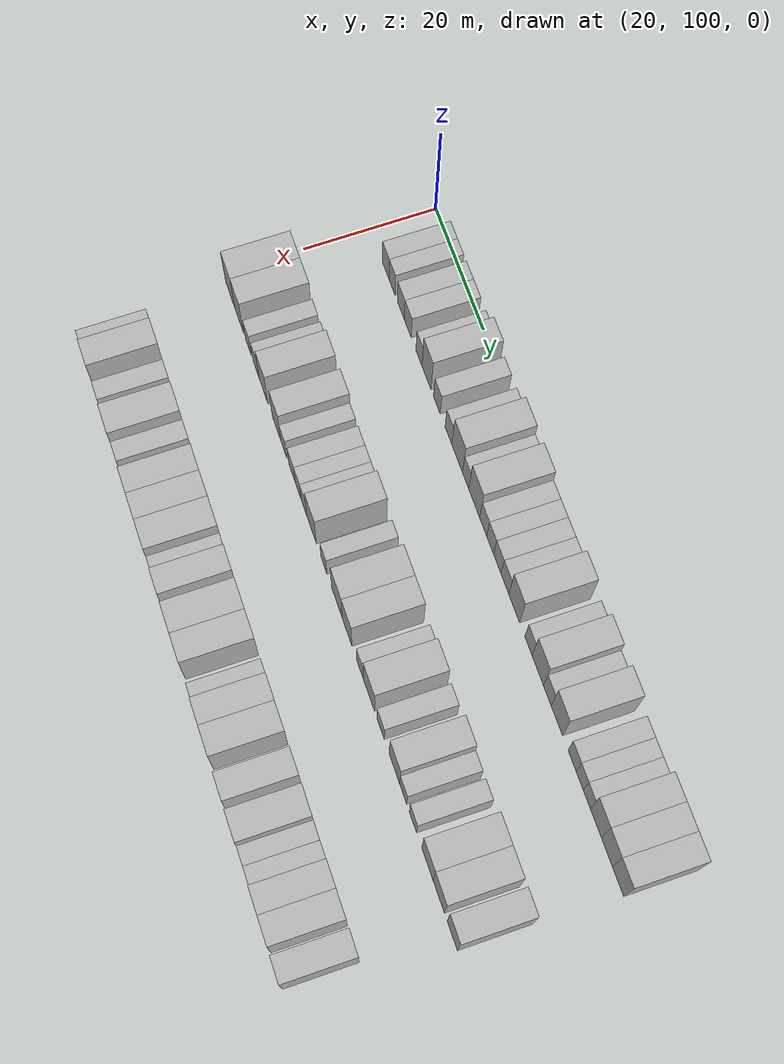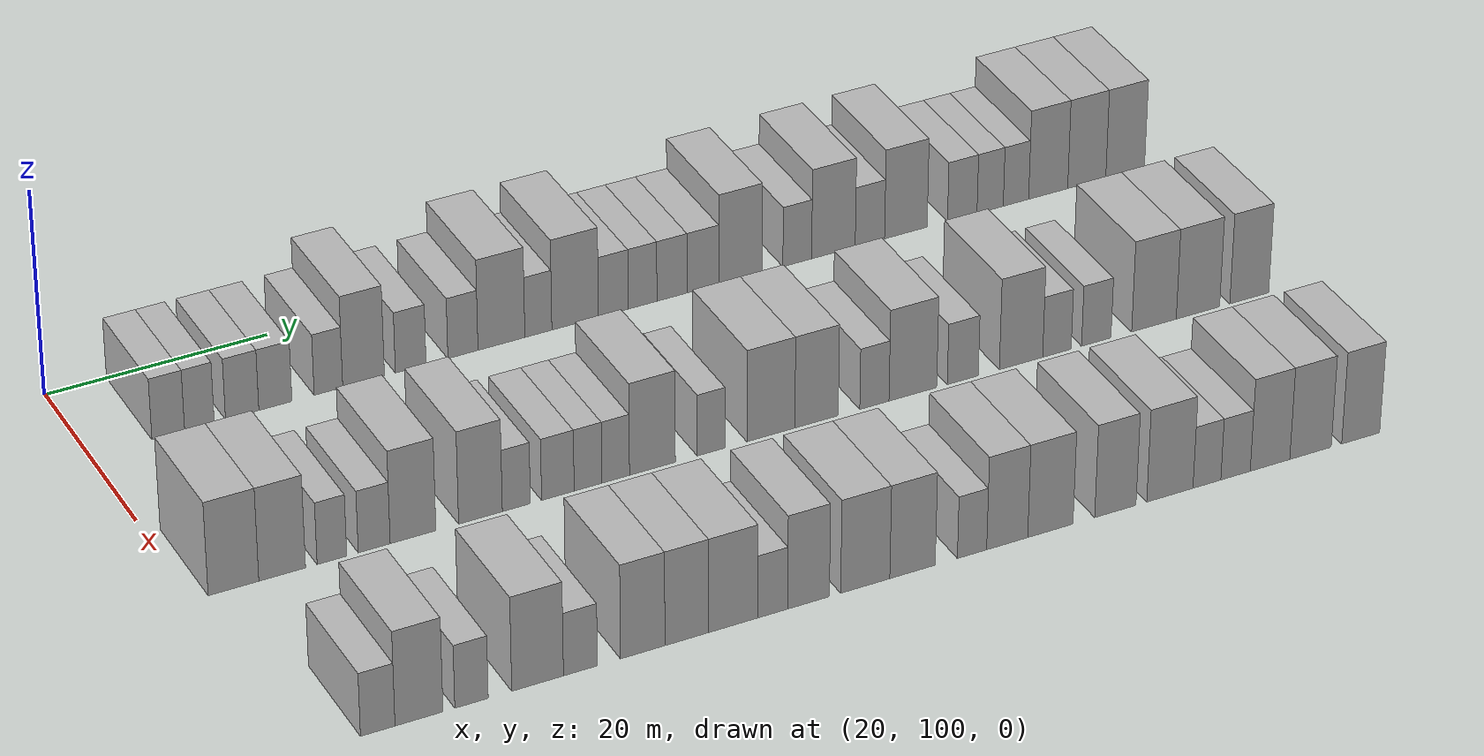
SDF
<sdf version="1.6">
 <world name="default">
  <model name="building_121">
   <static>1</static>
   <pose>25.0000 106.9088 0 0.000000 0.000000 0.000000</pose>
   <link name="link">
    <pose>0 0 3.00 0 0 0</pose>
    <collision name="collision"><geometry><box><size>10.0000 2.8925 6.0000</size></box></geometry></collision>
    <visual name="visual">
     <cast_shadows>0</cast_shadows>
     <geometry><box><size>10.0000 2.8925 6.0000</size></box></geometry>
     <material>
      <script>
       <uri>model://HANNAS_wall/materials/scripts</uri>
       <uri>model://HANNAS_wall/materials/textures</uri>
       <name>vrc/HANNAS_wall</name>
      </script>
     </material>
    </visual>
   </link>
  </model>
  <model name="building_122">
   <static>1</static>
   <pose>25.0000 109.6679 0 0.000000 0.000000 0.000000</pose>
   <link name="link">
    <pose>0 0 3.00 0 0 0</pose>
    <collision name="collision"><geometry><box><size>10.0000 2.6255 6.0000</size></box></geometry></collision>
    <visual name="visual">
     <cast_shadows>0</cast_shadows>
     <geometry><box><size>10.0000 2.6255 6.0000</size></box></geometry>
     <material>
      <script>
       <uri>model://HANNAS_wall/materials/scripts</uri>
       <uri>model://HANNAS_wall/materials/textures</uri>
       <name>vrc/HANNAS_wall</name>
      </script>
     </material>
    </visual>
   </link>
  </model>
  <model name="building_123">
   <static>1</static>
   <pose>25.0000 113.4683 0 0.000000 0.000000 0.000000</pose>
   <link name="link">
    <pose>0 0 3.00 0 0 0</pose>
    <collision name="collision"><geometry><box><size>10.0000 2.9754 6.0000</size></box></geometry></collision>
    <visual name="visual">
     <cast_shadows>0</cast_shadows>
     <geometry><box><size>10.0000 2.9754 6.0000</size></box></geometry>
     <material>
      <script>
       <uri>model://HANNAS_wall/materials/scripts</uri>
       <uri>model://HANNAS_wall/materials/textures</uri>
       <name>vrc/HANNAS_wall</name>
      </script>
     </material>
    </visual>
   </link>
  </model>
  <model name="building_124">
   <static>1</static>
   <pose>25.0000 116.4394 0 0.000000 0.000000 0.000000</pose>
   <link name="link">
    <pose>0 0 3.00 0 0 0</pose>
    <collision name="collision"><geometry><box><size>10.0000 2.9667 6.0000</size></box></geometry></collision>
    <visual name="visual">
     <cast_shadows>0</cast_shadows>
     <geometry><box><size>10.0000 2.9667 6.0000</size></box></geometry>
     <material>
      <script>
       <uri>model://HANNAS_wall/materials/scripts</uri>
       <uri>model://HANNAS_wall/materials/textures</uri>
       <name>vrc/HANNAS_wall</name>
      </script>
     </material>
    </visual>
   </link>
  </model>
  <model name="building_125">
   <static>1</static>
   <pose>25.0000 121.2120 0 0.000000 0.000000 0.000000</pose>
   <link name="link">
    <pose>0 0 3.00 0 0 0</pose>
    <collision name="collision"><geometry><box><size>10.0000 2.5785 6.0000</size></box></geometry></collision>
    <visual name="visual">
     <cast_shadows>0</cast_shadows>
     <geometry><box><size>10.0000 2.5785 6.0000</size></box></geometry>
     <material>
      <script>
       <uri>model://HANNAS_wall/materials/scripts</uri>
       <uri>model://HANNAS_wall/materials/textures</uri>
       <name>vrc/HANNAS_wall</name>
      </script>
     </material>
    </visual>
   </link>
  </model>
  <model name="building_126">
   <static>1</static>
   <pose>25.0000 124.3892 0 0.000000 0.000000 0.000000</pose>
   <link name="link">
    <pose>0 0 4.50 0 0 0</pose>
    <collision name="collision"><geometry><box><size>10.0000 3.7758 9.0000</size></box></geometry></collision>
    <visual name="visual">
     <cast_shadows>0</cast_shadows>
     <geometry><box><size>10.0000 3.7758 9.0000</size></box></geometry>
     <material>
      <script>
       <uri>model://HANNAS_wall/materials/scripts</uri>
       <uri>model://HANNAS_wall/materials/textures</uri>
       <name>vrc/HANNAS_wall</name>
      </script>
     </material>
    </visual>
   </link>
  </model>
  <model name="building_127">
   <static>1</static>
   <pose>25.0000 128.6763 0 0.000000 0.000000 0.000000</pose>
   <link name="link">
    <pose>0 0 3.00 0 0 0</pose>
    <collision name="collision"><geometry><box><size>10.0000 2.7986 6.0000</size></box></geometry></collision>
    <visual name="visual">
     <cast_shadows>0</cast_shadows>
     <geometry><box><size>10.0000 2.7986 6.0000</size></box></geometry>
     <material>
      <script>
       <uri>model://HANNAS_wall/materials/scripts</uri>
       <uri>model://HANNAS_wall/materials/textures</uri>
       <name>vrc/HANNAS_wall</name>
      </script>
     </material>
    </visual>
   </link>
  </model>
  <model name="building_128">
   <static>1</static>
   <pose>25.0000 133.4589 0 0.000000 0.000000 0.000000</pose>
   <link name="link">
    <pose>0 0 3.00 0 0 0</pose>
    <collision name="collision"><geometry><box><size>10.0000 2.7665 6.0000</size></box></geometry></collision>
    <visual name="visual">
     <cast_shadows>0</cast_shadows>
     <geometry><box><size>10.0000 2.7665 6.0000</size></box></geometry>
     <material>
      <script>
       <uri>model://HANNAS_wall/materials/scripts</uri>
       <uri>model://HANNAS_wall/materials/textures</uri>
       <name>vrc/HANNAS_wall</name>
      </script>
     </material>
    </visual>
   </link>
  </model>
  <model name="building_129">
   <static>1</static>
   <pose>25.0000 137.0062 0 0.000000 0.000000 0.000000</pose>
   <link name="link">
    <pose>0 0 4.50 0 0 0</pose>
    <collision name="collision"><geometry><box><size>10.0000 4.3282 9.0000</size></box></geometry></collision>
    <visual name="visual">
     <cast_shadows>0</cast_shadows>
     <geometry><box><size>10.0000 4.3282 9.0000</size></box></geometry>
     <material>
      <script>
       <uri>model://HANNAS_wall/materials/scripts</uri>
       <uri>model://HANNAS_wall/materials/textures</uri>
       <name>vrc/HANNAS_wall</name>
      </script>
     </material>
    </visual>
   </link>
  </model>
  <model name="building_130">
   <static>1</static>
   <pose>25.0000 140.4239 0 0.000000 0.000000 0.000000</pose>
   <link name="link">
    <pose>0 0 3.00 0 0 0</pose>
    <collision name="collision"><geometry><box><size>10.0000 2.5071 6.0000</size></box></geometry></collision>
    <visual name="visual">
     <cast_shadows>0</cast_shadows>
     <geometry><box><size>10.0000 2.5071 6.0000</size></box></geometry>
     <material>
      <script>
       <uri>model://HANNAS_wall/materials/scripts</uri>
       <uri>model://HANNAS_wall/materials/textures</uri>
       <name>vrc/HANNAS_wall</name>
      </script>
     </material>
    </visual>
   </link>
  </model>
  <model name="building_131">
   <static>1</static>
   <pose>25.0000 143.8517 0 0.000000 0.000000 0.000000</pose>
   <link name="link">
    <pose>0 0 4.50 0 0 0</pose>
    <collision name="collision"><geometry><box><size>10.0000 4.3484 9.0000</size></box></geometry></collision>
    <visual name="visual">
     <cast_shadows>0</cast_shadows>
     <geometry><box><size>10.0000 4.3484 9.0000</size></box></geometry>
     <material>
      <script>
       <uri>model://HANNAS_wall/materials/scripts</uri>
       <uri>model://HANNAS_wall/materials/textures</uri>
       <name>vrc/HANNAS_wall</name>
      </script>
     </material>
    </visual>
   </link>
  </model>
  <model name="building_132">
   <static>1</static>
   <pose>25.0000 147.4220 0 0.000000 0.000000 0.000000</pose>
   <link name="link">
    <pose>0 0 3.00 0 0 0</pose>
    <collision name="collision"><geometry><box><size>10.0000 2.7921 6.0000</size></box></geometry></collision>
    <visual name="visual">
     <cast_shadows>0</cast_shadows>
     <geometry><box><size>10.0000 2.7921 6.0000</size></box></geometry>
     <material>
      <script>
       <uri>model://HANNAS_wall/materials/scripts</uri>
       <uri>model://HANNAS_wall/materials/textures</uri>
       <name>vrc/HANNAS_wall</name>
      </script>
     </material>
    </visual>
   </link>
  </model>
  <model name="building_133">
   <static>1</static>
   <pose>25.0000 150.1694 0 0.000000 0.000000 0.000000</pose>
   <link name="link">
    <pose>0 0 3.00 0 0 0</pose>
    <collision name="collision"><geometry><box><size>10.0000 2.7027 6.0000</size></box></geometry></collision>
    <visual name="visual">
     <cast_shadows>0</cast_shadows>
     <geometry><box><size>10.0000 2.7027 6.0000</size></box></geometry>
     <material>
      <script>
       <uri>model://HANNAS_wall/materials/scripts</uri>
       <uri>model://HANNAS_wall/materials/textures</uri>
       <name>vrc/HANNAS_wall</name>
      </script>
     </material>
    </visual>
   </link>
  </model>
  <model name="building_134">
   <static>1</static>
   <pose>25.0000 152.9477 0 0.000000 0.000000 0.000000</pose>
   <link name="link">
    <pose>0 0 3.00 0 0 0</pose>
    <collision name="collision"><geometry><box><size>10.0000 2.8540 6.0000</size></box></geometry></collision>
    <visual name="visual">
     <cast_shadows>0</cast_shadows>
     <geometry><box><size>10.0000 2.8540 6.0000</size></box></geometry>
     <material>
      <script>
       <uri>model://HANNAS_wall/materials/scripts</uri>
       <uri>model://HANNAS_wall/materials/textures</uri>
       <name>vrc/HANNAS_wall</name>
      </script>
     </material>
    </visual>
   </link>
  </model>
  <model name="building_135">
   <static>1</static>
   <pose>25.0000 155.8714 0 0.000000 0.000000 0.000000</pose>
   <link name="link">
    <pose>0 0 3.00 0 0 0</pose>
    <collision name="collision"><geometry><box><size>10.0000 2.9935 6.0000</size></box></geometry></collision>
    <visual name="visual">
     <cast_shadows>0</cast_shadows>
     <geometry><box><size>10.0000 2.9935 6.0000</size></box></geometry>
     <material>
      <script>
       <uri>model://HANNAS_wall/materials/scripts</uri>
       <uri>model://HANNAS_wall/materials/textures</uri>
       <name>vrc/HANNAS_wall</name>
      </script>
     </material>
    </visual>
   </link>
  </model>
  <model name="building_136">
   <static>1</static>
   <pose>25.0000 159.4357 0 0.000000 0.000000 0.000000</pose>
   <link name="link">
    <pose>0 0 4.50 0 0 0</pose>
    <collision name="collision"><geometry><box><size>10.0000 4.1350 9.0000</size></box></geometry></collision>
    <visual name="visual">
     <cast_shadows>0</cast_shadows>
     <geometry><box><size>10.0000 4.1350 9.0000</size></box></geometry>
     <material>
      <script>
       <uri>model://HANNAS_wall/materials/scripts</uri>
       <uri>model://HANNAS_wall/materials/textures</uri>
       <name>vrc/HANNAS_wall</name>
      </script>
     </material>
    </visual>
   </link>
  </model>
  <model name="building_137">
   <static>1</static>
   <pose>25.0000 164.8867 0 0.000000 0.000000 0.000000</pose>
   <link name="link">
    <pose>0 0 3.00 0 0 0</pose>
    <collision name="collision"><geometry><box><size>10.0000 2.7670 6.0000</size></box></geometry></collision>
    <visual name="visual">
     <cast_shadows>0</cast_shadows>
     <geometry><box><size>10.0000 2.7670 6.0000</size></box></geometry>
     <material>
      <script>
       <uri>model://HANNAS_wall/materials/scripts</uri>
       <uri>model://HANNAS_wall/materials/textures</uri>
       <name>vrc/HANNAS_wall</name>
      </script>
     </material>
    </visual>
   </link>
  </model>
  <model name="building_138">
   <static>1</static>
   <pose>25.0000 168.3752 0 0.000000 0.000000 0.000000</pose>
   <link name="link">
    <pose>0 0 4.50 0 0 0</pose>
    <collision name="collision"><geometry><box><size>10.0000 4.2100 9.0000</size></box></geometry></collision>
    <visual name="visual">
     <cast_shadows>0</cast_shadows>
     <geometry><box><size>10.0000 4.2100 9.0000</size></box></geometry>
     <material>
      <script>
       <uri>model://HANNAS_wall/materials/scripts</uri>
       <uri>model://HANNAS_wall/materials/textures</uri>
       <name>vrc/HANNAS_wall</name>
      </script>
     </material>
    </visual>
   </link>
  </model>
  <model name="building_139">
   <static>1</static>
   <pose>25.0000 171.9053 0 0.000000 0.000000 0.000000</pose>
   <link name="link">
    <pose>0 0 3.00 0 0 0</pose>
    <collision name="collision"><geometry><box><size>10.0000 2.8503 6.0000</size></box></geometry></collision>
    <visual name="visual">
     <cast_shadows>0</cast_shadows>
     <geometry><box><size>10.0000 2.8503 6.0000</size></box></geometry>
     <material>
      <script>
       <uri>model://HANNAS_wall/materials/scripts</uri>
       <uri>model://HANNAS_wall/materials/textures</uri>
       <name>vrc/HANNAS_wall</name>
      </script>
     </material>
    </visual>
   </link>
  </model>
  <model name="building_140">
   <static>1</static>
   <pose>25.0000 175.4078 0 0.000000 0.000000 0.000000</pose>
   <link name="link">
    <pose>0 0 4.50 0 0 0</pose>
    <collision name="collision"><geometry><box><size>10.0000 4.1547 9.0000</size></box></geometry></collision>
    <visual name="visual">
     <cast_shadows>0</cast_shadows>
     <geometry><box><size>10.0000 4.1547 9.0000</size></box></geometry>
     <material>
      <script>
       <uri>model://HANNAS_wall/materials/scripts</uri>
       <uri>model://HANNAS_wall/materials/textures</uri>
       <name>vrc/HANNAS_wall</name>
      </script>
     </material>
    </visual>
   </link>
  </model>
  <model name="building_141">
   <static>1</static>
   <pose>25.0000 180.9359 0 0.000000 0.000000 0.000000</pose>
   <link name="link">
    <pose>0 0 3.00 0 0 0</pose>
    <collision name="collision"><geometry><box><size>10.0000 2.9015 6.0000</size></box></geometry></collision>
    <visual name="visual">
     <cast_shadows>0</cast_shadows>
     <geometry><box><size>10.0000 2.9015 6.0000</size></box></geometry>
     <material>
      <script>
       <uri>model://HANNAS_wall/materials/scripts</uri>
       <uri>model://HANNAS_wall/materials/textures</uri>
       <name>vrc/HANNAS_wall</name>
      </script>
     </material>
    </visual>
   </link>
  </model>
  <model name="building_142">
   <static>1</static>
   <pose>25.0000 183.6845 0 0.000000 0.000000 0.000000</pose>
   <link name="link">
    <pose>0 0 3.00 0 0 0</pose>
    <collision name="collision"><geometry><box><size>10.0000 2.5956 6.0000</size></box></geometry></collision>
    <visual name="visual">
     <cast_shadows>0</cast_shadows>
     <geometry><box><size>10.0000 2.5956 6.0000</size></box></geometry>
     <material>
      <script>
       <uri>model://HANNAS_wall/materials/scripts</uri>
       <uri>model://HANNAS_wall/materials/textures</uri>
       <name>vrc/HANNAS_wall</name>
      </script>
     </material>
    </visual>
   </link>
  </model>
  <model name="building_143">
   <static>1</static>
   <pose>25.0000 186.2399 0 0.000000 0.000000 0.000000</pose>
   <link name="link">
    <pose>0 0 3.00 0 0 0</pose>
    <collision name="collision"><geometry><box><size>10.0000 2.5151 6.0000</size></box></geometry></collision>
    <visual name="visual">
     <cast_shadows>0</cast_shadows>
     <geometry><box><size>10.0000 2.5151 6.0000</size></box></geometry>
     <material>
      <script>
       <uri>model://HANNAS_wall/materials/scripts</uri>
       <uri>model://HANNAS_wall/materials/textures</uri>
       <name>vrc/HANNAS_wall</name>
      </script>
     </material>
    </visual>
   </link>
  </model>
  <model name="building_144">
   <static>1</static>
   <pose>25.0000 189.4436 0 0.000000 0.000000 0.000000</pose>
   <link name="link">
    <pose>0 0 4.50 0 0 0</pose>
    <collision name="collision"><geometry><box><size>10.0000 3.8923 9.0000</size></box></geometry></collision>
    <visual name="visual">
     <cast_shadows>0</cast_shadows>
     <geometry><box><size>10.0000 3.8923 9.0000</size></box></geometry>
     <material>
      <script>
       <uri>model://HANNAS_wall/materials/scripts</uri>
       <uri>model://HANNAS_wall/materials/textures</uri>
       <name>vrc/HANNAS_wall</name>
      </script>
     </material>
    </visual>
   </link>
  </model>
  <model name="building_145">
   <static>1</static>
   <pose>25.0000 193.2965 0 0.000000 0.000000 0.000000</pose>
   <link name="link">
    <pose>0 0 4.50 0 0 0</pose>
    <collision name="collision"><geometry><box><size>10.0000 3.8136 9.0000</size></box></geometry></collision>
    <visual name="visual">
     <cast_shadows>0</cast_shadows>
     <geometry><box><size>10.0000 3.8136 9.0000</size></box></geometry>
     <material>
      <script>
       <uri>model://HANNAS_wall/materials/scripts</uri>
       <uri>model://HANNAS_wall/materials/textures</uri>
       <name>vrc/HANNAS_wall</name>
      </script>
     </material>
    </visual>
   </link>
  </model>
  <model name="building_146">
   <static>1</static>
   <pose>25.0000 197.1511 0 0.000000 0.000000 0.000000</pose>
   <link name="link">
    <pose>0 0 4.50 0 0 0</pose>
    <collision name="collision"><geometry><box><size>10.0000 3.8956 9.0000</size></box></geometry></collision>
    <visual name="visual">
     <cast_shadows>0</cast_shadows>
     <geometry><box><size>10.0000 3.8956 9.0000</size></box></geometry>
     <material>
      <script>
       <uri>model://HANNAS_wall/materials/scripts</uri>
       <uri>model://HANNAS_wall/materials/textures</uri>
       <name>vrc/HANNAS_wall</name>
      </script>
     </material>
    </visual>
   </link>
  </model>
  <model name="building_314">
   <static>1</static>
   <pose>47.0000 103.4677 0 0.000000 0.000000 0.000000</pose>
   <link name="link">
    <pose>0 0 4.50 0 0 0</pose>
    <collision name="collision"><geometry><box><size>10.0000 4.3377 9.0000</size></box></geometry></collision>
    <visual name="visual">
     <cast_shadows>0</cast_shadows>
     <geometry><box><size>10.0000 4.3377 9.0000</size></box></geometry>
     <material>
      <script>
       <uri>model://HANNAS_wall/materials/scripts</uri>
       <uri>model://HANNAS_wall/materials/textures</uri>
       <name>vrc/HANNAS_wall</name>
      </script>
     </material>
    </visual>
   </link>
  </model>
  <model name="building_315">
   <static>1</static>
   <pose>47.0000 107.6491 0 0.000000 0.000000 0.000000</pose>
   <link name="link">
    <pose>0 0 4.50 0 0 0</pose>
    <collision name="collision"><geometry><box><size>10.0000 4.0250 9.0000</size></box></geometry></collision>
    <visual name="visual">
     <cast_shadows>0</cast_shadows>
     <geometry><box><size>10.0000 4.0250 9.0000</size></box></geometry>
     <material>
      <script>
       <uri>model://HANNAS_wall/materials/scripts</uri>
       <uri>model://HANNAS_wall/materials/textures</uri>
       <name>vrc/HANNAS_wall</name>
      </script>
     </material>
    </visual>
   </link>
  </model>
  <model name="building_316">
   <static>1</static>
   <pose>47.0000 111.9459 0 0.000000 0.000000 0.000000</pose>
   <link name="link">
    <pose>0 0 3.00 0 0 0</pose>
    <collision name="collision"><geometry><box><size>10.0000 2.5687 6.0000</size></box></geometry></collision>
    <visual name="visual">
     <cast_shadows>0</cast_shadows>
     <geometry><box><size>10.0000 2.5687 6.0000</size></box></geometry>
     <material>
      <script>
       <uri>model://HANNAS_wall/materials/scripts</uri>
       <uri>model://HANNAS_wall/materials/textures</uri>
       <name>vrc/HANNAS_wall</name>
      </script>
     </material>
    </visual>
   </link>
  </model>
  <model name="building_317">
   <static>1</static>
   <pose>47.0000 115.6227 0 0.000000 0.000000 0.000000</pose>
   <link name="link">
    <pose>0 0 3.00 0 0 0</pose>
    <collision name="collision"><geometry><box><size>10.0000 2.7848 6.0000</size></box></geometry></collision>
    <visual name="visual">
     <cast_shadows>0</cast_shadows>
     <geometry><box><size>10.0000 2.7848 6.0000</size></box></geometry>
     <material>
      <script>
       <uri>model://HANNAS_wall/materials/scripts</uri>
       <uri>model://HANNAS_wall/materials/textures</uri>
       <name>vrc/HANNAS_wall</name>
      </script>
     </material>
    </visual>
   </link>
  </model>
  <model name="building_318">
   <static>1</static>
   <pose>47.0000 119.0174 0 0.000000 0.000000 0.000000</pose>
   <link name="link">
    <pose>0 0 4.50 0 0 0</pose>
    <collision name="collision"><geometry><box><size>10.0000 4.0046 9.0000</size></box></geometry></collision>
    <visual name="visual">
     <cast_shadows>0</cast_shadows>
     <geometry><box><size>10.0000 4.0046 9.0000</size></box></geometry>
     <material>
      <script>
       <uri>model://HANNAS_wall/materials/scripts</uri>
       <uri>model://HANNAS_wall/materials/textures</uri>
       <name>vrc/HANNAS_wall</name>
      </script>
     </material>
    </visual>
   </link>
  </model>
  <model name="building_319">
   <static>1</static>
   <pose>47.0000 124.9558 0 0.000000 0.000000 0.000000</pose>
   <link name="link">
    <pose>0 0 4.50 0 0 0</pose>
    <collision name="collision"><geometry><box><size>10.0000 3.8721 9.0000</size></box></geometry></collision>
    <visual name="visual">
     <cast_shadows>0</cast_shadows>
     <geometry><box><size>10.0000 3.8721 9.0000</size></box></geometry>
     <material>
      <script>
       <uri>model://HANNAS_wall/materials/scripts</uri>
       <uri>model://HANNAS_wall/materials/textures</uri>
       <name>vrc/HANNAS_wall</name>
      </script>
     </material>
    </visual>
   </link>
  </model>
  <model name="building_320">
   <static>1</static>
   <pose>47.0000 128.1368 0 0.000000 0.000000 0.000000</pose>
   <link name="link">
    <pose>0 0 3.00 0 0 0</pose>
    <collision name="collision"><geometry><box><size>10.0000 2.4899 6.0000</size></box></geometry></collision>
    <visual name="visual">
     <cast_shadows>0</cast_shadows>
     <geometry><box><size>10.0000 2.4899 6.0000</size></box></geometry>
     <material>
      <script>
       <uri>model://HANNAS_wall/materials/scripts</uri>
       <uri>model://HANNAS_wall/materials/textures</uri>
       <name>vrc/HANNAS_wall</name>
      </script>
     </material>
    </visual>
   </link>
  </model>
  <model name="building_321">
   <static>1</static>
   <pose>47.0000 131.8380 0 0.000000 0.000000 0.000000</pose>
   <link name="link">
    <pose>0 0 3.00 0 0 0</pose>
    <collision name="collision"><geometry><box><size>10.0000 2.9126 6.0000</size></box></geometry></collision>
    <visual name="visual">
     <cast_shadows>0</cast_shadows>
     <geometry><box><size>10.0000 2.9126 6.0000</size></box></geometry>
     <material>
      <script>
       <uri>model://HANNAS_wall/materials/scripts</uri>
       <uri>model://HANNAS_wall/materials/textures</uri>
       <name>vrc/HANNAS_wall</name>
      </script>
     </material>
    </visual>
   </link>
  </model>
  <model name="building_322">
   <static>1</static>
   <pose>47.0000 134.5436 0 0.000000 0.000000 0.000000</pose>
   <link name="link">
    <pose>0 0 3.00 0 0 0</pose>
    <collision name="collision"><geometry><box><size>10.0000 2.4986 6.0000</size></box></geometry></collision>
    <visual name="visual">
     <cast_shadows>0</cast_shadows>
     <geometry><box><size>10.0000 2.4986 6.0000</size></box></geometry>
     <material>
      <script>
       <uri>model://HANNAS_wall/materials/scripts</uri>
       <uri>model://HANNAS_wall/materials/textures</uri>
       <name>vrc/HANNAS_wall</name>
      </script>
     </material>
    </visual>
   </link>
  </model>
  <model name="building_323">
   <static>1</static>
   <pose>47.0000 137.0313 0 0.000000 0.000000 0.000000</pose>
   <link name="link">
    <pose>0 0 3.00 0 0 0</pose>
    <collision name="collision"><geometry><box><size>10.0000 2.4767 6.0000</size></box></geometry></collision>
    <visual name="visual">
     <cast_shadows>0</cast_shadows>
     <geometry><box><size>10.0000 2.4767 6.0000</size></box></geometry>
     <material>
      <script>
       <uri>model://HANNAS_wall/materials/scripts</uri>
       <uri>model://HANNAS_wall/materials/textures</uri>
       <name>vrc/HANNAS_wall</name>
      </script>
     </material>
    </visual>
   </link>
  </model>
  <model name="building_324">
   <static>1</static>
   <pose>47.0000 140.3444 0 0.000000 0.000000 0.000000</pose>
   <link name="link">
    <pose>0 0 4.50 0 0 0</pose>
    <collision name="collision"><geometry><box><size>10.0000 4.1496 9.0000</size></box></geometry></collision>
    <visual name="visual">
     <cast_shadows>0</cast_shadows>
     <geometry><box><size>10.0000 4.1496 9.0000</size></box></geometry>
     <material>
      <script>
       <uri>model://HANNAS_wall/materials/scripts</uri>
       <uri>model://HANNAS_wall/materials/textures</uri>
       <name>vrc/HANNAS_wall</name>
      </script>
     </material>
    </visual>
   </link>
  </model>
  <model name="building_325">
   <static>1</static>
   <pose>47.0000 145.6834 0 0.000000 0.000000 0.000000</pose>
   <link name="link">
    <pose>0 0 3.00 0 0 0</pose>
    <collision name="collision"><geometry><box><size>10.0000 2.5284 6.0000</size></box></geometry></collision>
    <visual name="visual">
     <cast_shadows>0</cast_shadows>
     <geometry><box><size>10.0000 2.5284 6.0000</size></box></geometry>
     <material>
      <script>
       <uri>model://HANNAS_wall/materials/scripts</uri>
       <uri>model://HANNAS_wall/materials/textures</uri>
       <name>vrc/HANNAS_wall</name>
      </script>
     </material>
    </visual>
   </link>
  </model>
  <model name="building_326">
   <static>1</static>
   <pose>47.0000 151.1542 0 0.000000 0.000000 0.000000</pose>
   <link name="link">
    <pose>0 0 4.50 0 0 0</pose>
    <collision name="collision"><geometry><box><size>10.0000 4.4133 9.0000</size></box></geometry></collision>
    <visual name="visual">
     <cast_shadows>0</cast_shadows>
     <geometry><box><size>10.0000 4.4133 9.0000</size></box></geometry>
     <material>
      <script>
       <uri>model://HANNAS_wall/materials/scripts</uri>
       <uri>model://HANNAS_wall/materials/textures</uri>
       <name>vrc/HANNAS_wall</name>
      </script>
     </material>
    </visual>
   </link>
  </model>
  <model name="building_327">
   <static>1</static>
   <pose>47.0000 155.3713 0 0.000000 0.000000 0.000000</pose>
   <link name="link">
    <pose>0 0 4.50 0 0 0</pose>
    <collision name="collision"><geometry><box><size>10.0000 4.0208 9.0000</size></box></geometry></collision>
    <visual name="visual">
     <cast_shadows>0</cast_shadows>
     <geometry><box><size>10.0000 4.0208 9.0000</size></box></geometry>
     <material>
      <script>
       <uri>model://HANNAS_wall/materials/scripts</uri>
       <uri>model://HANNAS_wall/materials/textures</uri>
       <name>vrc/HANNAS_wall</name>
      </script>
     </material>
    </visual>
   </link>
  </model>
  <model name="building_328">
   <static>1</static>
   <pose>47.0000 160.7436 0 0.000000 0.000000 0.000000</pose>
   <link name="link">
    <pose>0 0 3.00 0 0 0</pose>
    <collision name="collision"><geometry><box><size>10.0000 2.7238 6.0000</size></box></geometry></collision>
    <visual name="visual">
     <cast_shadows>0</cast_shadows>
     <geometry><box><size>10.0000 2.7238 6.0000</size></box></geometry>
     <material>
      <script>
       <uri>model://HANNAS_wall/materials/scripts</uri>
       <uri>model://HANNAS_wall/materials/textures</uri>
       <name>vrc/HANNAS_wall</name>
      </script>
     </material>
    </visual>
   </link>
  </model>
  <model name="building_329">
   <static>1</static>
   <pose>47.0000 164.3425 0 0.000000 0.000000 0.000000</pose>
   <link name="link">
    <pose>0 0 4.50 0 0 0</pose>
    <collision name="collision"><geometry><box><size>10.0000 4.4739 9.0000</size></box></geometry></collision>
    <visual name="visual">
     <cast_shadows>0</cast_shadows>
     <geometry><box><size>10.0000 4.4739 9.0000</size></box></geometry>
     <material>
      <script>
       <uri>model://HANNAS_wall/materials/scripts</uri>
       <uri>model://HANNAS_wall/materials/textures</uri>
       <name>vrc/HANNAS_wall</name>
      </script>
     </material>
    </visual>
   </link>
  </model>
  <model name="building_330">
   <static>1</static>
   <pose>47.0000 169.0443 0 0.000000 0.000000 0.000000</pose>
   <link name="link">
    <pose>0 0 3.00 0 0 0</pose>
    <collision name="collision"><geometry><box><size>10.0000 2.9296 6.0000</size></box></geometry></collision>
    <visual name="visual">
     <cast_shadows>0</cast_shadows>
     <geometry><box><size>10.0000 2.9296 6.0000</size></box></geometry>
     <material>
      <script>
       <uri>model://HANNAS_wall/materials/scripts</uri>
       <uri>model://HANNAS_wall/materials/textures</uri>
       <name>vrc/HANNAS_wall</name>
      </script>
     </material>
    </visual>
   </link>
  </model>
  <model name="building_331">
   <static>1</static>
   <pose>47.0000 174.5712 0 0.000000 0.000000 0.000000</pose>
   <link name="link">
    <pose>0 0 4.50 0 0 0</pose>
    <collision name="collision"><geometry><box><size>10.0000 4.1242 9.0000</size></box></geometry></collision>
    <visual name="visual">
     <cast_shadows>0</cast_shadows>
     <geometry><box><size>10.0000 4.1242 9.0000</size></box></geometry>
     <material>
      <script>
       <uri>model://HANNAS_wall/materials/scripts</uri>
       <uri>model://HANNAS_wall/materials/textures</uri>
       <name>vrc/HANNAS_wall</name>
      </script>
     </material>
    </visual>
   </link>
  </model>
  <model name="building_332">
   <static>1</static>
   <pose>47.0000 177.9993 0 0.000000 0.000000 0.000000</pose>
   <link name="link">
    <pose>0 0 3.00 0 0 0</pose>
    <collision name="collision"><geometry><box><size>10.0000 2.7319 6.0000</size></box></geometry></collision>
    <visual name="visual">
     <cast_shadows>0</cast_shadows>
     <geometry><box><size>10.0000 2.7319 6.0000</size></box></geometry>
     <material>
      <script>
       <uri>model://HANNAS_wall/materials/scripts</uri>
       <uri>model://HANNAS_wall/materials/textures</uri>
       <name>vrc/HANNAS_wall</name>
      </script>
     </material>
    </visual>
   </link>
  </model>
  <model name="building_333">
   <static>1</static>
   <pose>47.0000 181.7812 0 0.000000 0.000000 0.000000</pose>
   <link name="link">
    <pose>0 0 3.00 0 0 0</pose>
    <collision name="collision"><geometry><box><size>10.0000 2.8319 6.0000</size></box></geometry></collision>
    <visual name="visual">
     <cast_shadows>0</cast_shadows>
     <geometry><box><size>10.0000 2.8319 6.0000</size></box></geometry>
     <material>
      <script>
       <uri>model://HANNAS_wall/materials/scripts</uri>
       <uri>model://HANNAS_wall/materials/textures</uri>
       <name>vrc/HANNAS_wall</name>
      </script>
     </material>
    </visual>
   </link>
  </model>
  <model name="building_334">
   <static>1</static>
   <pose>47.0000 187.3611 0 0.000000 0.000000 0.000000</pose>
   <link name="link">
    <pose>0 0 4.50 0 0 0</pose>
    <collision name="collision"><geometry><box><size>10.0000 4.3278 9.0000</size></box></geometry></collision>
    <visual name="visual">
     <cast_shadows>0</cast_shadows>
     <geometry><box><size>10.0000 4.3278 9.0000</size></box></geometry>
     <material>
      <script>
       <uri>model://HANNAS_wall/materials/scripts</uri>
       <uri>model://HANNAS_wall/materials/textures</uri>
       <name>vrc/HANNAS_wall</name>
      </script>
     </material>
    </visual>
   </link>
  </model>
  <model name="building_335">
   <static>1</static>
   <pose>47.0000 191.6416 0 0.000000 0.000000 0.000000</pose>
   <link name="link">
    <pose>0 0 4.50 0 0 0</pose>
    <collision name="collision"><geometry><box><size>10.0000 4.2332 9.0000</size></box></geometry></collision>
    <visual name="visual">
     <cast_shadows>0</cast_shadows>
     <geometry><box><size>10.0000 4.2332 9.0000</size></box></geometry>
     <material>
      <script>
       <uri>model://HANNAS_wall/materials/scripts</uri>
       <uri>model://HANNAS_wall/materials/textures</uri>
       <name>vrc/HANNAS_wall</name>
      </script>
     </material>
    </visual>
   </link>
  </model>
  <model name="building_336">
   <static>1</static>
   <pose>47.0000 196.6717 0 0.000000 0.000000 0.000000</pose>
   <link name="link">
    <pose>0 0 4.50 0 0 0</pose>
    <collision name="collision"><geometry><box><size>10.0000 3.8270 9.0000</size></box></geometry></collision>
    <visual name="visual">
     <cast_shadows>0</cast_shadows>
     <geometry><box><size>10.0000 3.8270 9.0000</size></box></geometry>
     <material>
      <script>
       <uri>model://HANNAS_wall/materials/scripts</uri>
       <uri>model://HANNAS_wall/materials/textures</uri>
       <name>vrc/HANNAS_wall</name>
      </script>
     </material>
    </visual>
   </link>
  </model>
  <model name="building_496">
   <static>1</static>
   <pose>69.0000 106.1866 0 0.000000 0.000000 0.000000</pose>
   <link name="link">
    <pose>0 0 3.00 0 0 0</pose>
    <collision name="collision"><geometry><box><size>10.0000 2.8917 6.0000</size></box></geometry></collision>
    <visual name="visual">
     <cast_shadows>0</cast_shadows>
     <geometry><box><size>10.0000 2.8917 6.0000</size></box></geometry>
     <material>
      <script>
       <uri>model://HANNAS_wall/materials/scripts</uri>
       <uri>model://HANNAS_wall/materials/textures</uri>
       <name>vrc/HANNAS_wall</name>
      </script>
     </material>
    </visual>
   </link>
  </model>
  <model name="building_497">
   <static>1</static>
   <pose>69.0000 109.6489 0 0.000000 0.000000 0.000000</pose>
   <link name="link">
    <pose>0 0 4.50 0 0 0</pose>
    <collision name="collision"><geometry><box><size>10.0000 4.0330 9.0000</size></box></geometry></collision>
    <visual name="visual">
     <cast_shadows>0</cast_shadows>
     <geometry><box><size>10.0000 4.0330 9.0000</size></box></geometry>
     <material>
      <script>
       <uri>model://HANNAS_wall/materials/scripts</uri>
       <uri>model://HANNAS_wall/materials/textures</uri>
       <name>vrc/HANNAS_wall</name>
      </script>
     </material>
    </visual>
   </link>
  </model>
  <model name="building_498">
   <static>1</static>
   <pose>69.0000 114.0804 0 0.000000 0.000000 0.000000</pose>
   <link name="link">
    <pose>0 0 3.00 0 0 0</pose>
    <collision name="collision"><geometry><box><size>10.0000 2.8301 6.0000</size></box></geometry></collision>
    <visual name="visual">
     <cast_shadows>0</cast_shadows>
     <geometry><box><size>10.0000 2.8301 6.0000</size></box></geometry>
     <material>
      <script>
       <uri>model://HANNAS_wall/materials/scripts</uri>
       <uri>model://HANNAS_wall/materials/textures</uri>
       <name>vrc/HANNAS_wall</name>
      </script>
     </material>
    </visual>
   </link>
  </model>
  <model name="building_499">
   <static>1</static>
   <pose>69.0000 119.7048 0 0.000000 0.000000 0.000000</pose>
   <link name="link">
    <pose>0 0 4.50 0 0 0</pose>
    <collision name="collision"><geometry><box><size>10.0000 4.4186 9.0000</size></box></geometry></collision>
    <visual name="visual">
     <cast_shadows>0</cast_shadows>
     <geometry><box><size>10.0000 4.4186 9.0000</size></box></geometry>
     <material>
      <script>
       <uri>model://HANNAS_wall/materials/scripts</uri>
       <uri>model://HANNAS_wall/materials/textures</uri>
       <name>vrc/HANNAS_wall</name>
      </script>
     </material>
    </visual>
   </link>
  </model>
  <model name="building_500">
   <static>1</static>
   <pose>69.0000 123.3704 0 0.000000 0.000000 0.000000</pose>
   <link name="link">
    <pose>0 0 3.00 0 0 0</pose>
    <collision name="collision"><geometry><box><size>10.0000 2.9126 6.0000</size></box></geometry></collision>
    <visual name="visual">
     <cast_shadows>0</cast_shadows>
     <geometry><box><size>10.0000 2.9126 6.0000</size></box></geometry>
     <material>
      <script>
       <uri>model://HANNAS_wall/materials/scripts</uri>
       <uri>model://HANNAS_wall/materials/textures</uri>
       <name>vrc/HANNAS_wall</name>
      </script>
     </material>
    </visual>
   </link>
  </model>
  <model name="building_501">
   <static>1</static>
   <pose>69.0000 128.7507 0 0.000000 0.000000 0.000000</pose>
   <link name="link">
    <pose>0 0 4.50 0 0 0</pose>
    <collision name="collision"><geometry><box><size>10.0000 3.8481 9.0000</size></box></geometry></collision>
    <visual name="visual">
     <cast_shadows>0</cast_shadows>
     <geometry><box><size>10.0000 3.8481 9.0000</size></box></geometry>
     <material>
      <script>
       <uri>model://HANNAS_wall/materials/scripts</uri>
       <uri>model://HANNAS_wall/materials/textures</uri>
       <name>vrc/HANNAS_wall</name>
      </script>
     </material>
    </visual>
   </link>
  </model>
  <model name="building_502">
   <static>1</static>
   <pose>69.0000 132.5746 0 0.000000 0.000000 0.000000</pose>
   <link name="link">
    <pose>0 0 4.50 0 0 0</pose>
    <collision name="collision"><geometry><box><size>10.0000 3.7995 9.0000</size></box></geometry></collision>
    <visual name="visual">
     <cast_shadows>0</cast_shadows>
     <geometry><box><size>10.0000 3.7995 9.0000</size></box></geometry>
     <material>
      <script>
       <uri>model://HANNAS_wall/materials/scripts</uri>
       <uri>model://HANNAS_wall/materials/textures</uri>
       <name>vrc/HANNAS_wall</name>
      </script>
     </material>
    </visual>
   </link>
  </model>
  <model name="building_503">
   <static>1</static>
   <pose>69.0000 136.6353 0 0.000000 0.000000 0.000000</pose>
   <link name="link">
    <pose>0 0 4.50 0 0 0</pose>
    <collision name="collision"><geometry><box><size>10.0000 4.3220 9.0000</size></box></geometry></collision>
    <visual name="visual">
     <cast_shadows>0</cast_shadows>
     <geometry><box><size>10.0000 4.3220 9.0000</size></box></geometry>
     <material>
      <script>
       <uri>model://HANNAS_wall/materials/scripts</uri>
       <uri>model://HANNAS_wall/materials/textures</uri>
       <name>vrc/HANNAS_wall</name>
      </script>
     </material>
    </visual>
   </link>
  </model>
  <model name="building_504">
   <static>1</static>
   <pose>69.0000 140.1087 0 0.000000 0.000000 0.000000</pose>
   <link name="link">
    <pose>0 0 3.00 0 0 0</pose>
    <collision name="collision"><geometry><box><size>10.0000 2.6248 6.0000</size></box></geometry></collision>
    <visual name="visual">
     <cast_shadows>0</cast_shadows>
     <geometry><box><size>10.0000 2.6248 6.0000</size></box></geometry>
     <material>
      <script>
       <uri>model://HANNAS_wall/materials/scripts</uri>
       <uri>model://HANNAS_wall/materials/textures</uri>
       <name>vrc/HANNAS_wall</name>
      </script>
     </material>
    </visual>
   </link>
  </model>
  <model name="building_505">
   <static>1</static>
   <pose>69.0000 143.2767 0 0.000000 0.000000 0.000000</pose>
   <link name="link">
    <pose>0 0 4.50 0 0 0</pose>
    <collision name="collision"><geometry><box><size>10.0000 3.7111 9.0000</size></box></geometry></collision>
    <visual name="visual">
     <cast_shadows>0</cast_shadows>
     <geometry><box><size>10.0000 3.7111 9.0000</size></box></geometry>
     <material>
      <script>
       <uri>model://HANNAS_wall/materials/scripts</uri>
       <uri>model://HANNAS_wall/materials/textures</uri>
       <name>vrc/HANNAS_wall</name>
      </script>
     </material>
    </visual>
   </link>
  </model>
  <model name="building_506">
   <static>1</static>
   <pose>69.0000 148.3294 0 0.000000 0.000000 0.000000</pose>
   <link name="link">
    <pose>0 0 4.50 0 0 0</pose>
    <collision name="collision"><geometry><box><size>10.0000 4.3942 9.0000</size></box></geometry></collision>
    <visual name="visual">
     <cast_shadows>0</cast_shadows>
     <geometry><box><size>10.0000 4.3942 9.0000</size></box></geometry>
     <material>
      <script>
       <uri>model://HANNAS_wall/materials/scripts</uri>
       <uri>model://HANNAS_wall/materials/textures</uri>
       <name>vrc/HANNAS_wall</name>
      </script>
     </material>
    </visual>
   </link>
  </model>
  <model name="building_507">
   <static>1</static>
   <pose>69.0000 152.5712 0 0.000000 0.000000 0.000000</pose>
   <link name="link">
    <pose>0 0 4.50 0 0 0</pose>
    <collision name="collision"><geometry><box><size>10.0000 4.0895 9.0000</size></box></geometry></collision>
    <visual name="visual">
     <cast_shadows>0</cast_shadows>
     <geometry><box><size>10.0000 4.0895 9.0000</size></box></geometry>
     <material>
      <script>
       <uri>model://HANNAS_wall/materials/scripts</uri>
       <uri>model://HANNAS_wall/materials/textures</uri>
       <name>vrc/HANNAS_wall</name>
      </script>
     </material>
    </visual>
   </link>
  </model>
  <model name="building_508">
   <static>1</static>
   <pose>69.0000 157.9435 0 0.000000 0.000000 0.000000</pose>
   <link name="link">
    <pose>0 0 3.00 0 0 0</pose>
    <collision name="collision"><geometry><box><size>10.0000 2.6550 6.0000</size></box></geometry></collision>
    <visual name="visual">
     <cast_shadows>0</cast_shadows>
     <geometry><box><size>10.0000 2.6550 6.0000</size></box></geometry>
     <material>
      <script>
       <uri>model://HANNAS_wall/materials/scripts</uri>
       <uri>model://HANNAS_wall/materials/textures</uri>
       <name>vrc/HANNAS_wall</name>
      </script>
     </material>
    </visual>
   </link>
  </model>
  <model name="building_509">
   <static>1</static>
   <pose>69.0000 161.1416 0 0.000000 0.000000 0.000000</pose>
   <link name="link">
    <pose>0 0 4.50 0 0 0</pose>
    <collision name="collision"><geometry><box><size>10.0000 3.7413 9.0000</size></box></geometry></collision>
    <visual name="visual">
     <cast_shadows>0</cast_shadows>
     <geometry><box><size>10.0000 3.7413 9.0000</size></box></geometry>
     <material>
      <script>
       <uri>model://HANNAS_wall/materials/scripts</uri>
       <uri>model://HANNAS_wall/materials/textures</uri>
       <name>vrc/HANNAS_wall</name>
      </script>
     </material>
    </visual>
   </link>
  </model>
  <model name="building_510">
   <static>1</static>
   <pose>69.0000 165.0888 0 0.000000 0.000000 0.000000</pose>
   <link name="link">
    <pose>0 0 4.50 0 0 0</pose>
    <collision name="collision"><geometry><box><size>10.0000 4.1530 9.0000</size></box></geometry></collision>
    <visual name="visual">
     <cast_shadows>0</cast_shadows>
     <geometry><box><size>10.0000 4.1530 9.0000</size></box></geometry>
     <material>
      <script>
       <uri>model://HANNAS_wall/materials/scripts</uri>
       <uri>model://HANNAS_wall/materials/textures</uri>
       <name>vrc/HANNAS_wall</name>
      </script>
     </material>
    </visual>
   </link>
  </model>
  <model name="building_511">
   <static>1</static>
   <pose>69.0000 171.0751 0 0.000000 0.000000 0.000000</pose>
   <link name="link">
    <pose>0 0 4.50 0 0 0</pose>
    <collision name="collision"><geometry><box><size>10.0000 3.8196 9.0000</size></box></geometry></collision>
    <visual name="visual">
     <cast_shadows>0</cast_shadows>
     <geometry><box><size>10.0000 3.8196 9.0000</size></box></geometry>
     <material>
      <script>
       <uri>model://HANNAS_wall/materials/scripts</uri>
       <uri>model://HANNAS_wall/materials/textures</uri>
       <name>vrc/HANNAS_wall</name>
      </script>
     </material>
    </visual>
   </link>
  </model>
  <model name="building_512">
   <static>1</static>
   <pose>69.0000 176.1422 0 0.000000 0.000000 0.000000</pose>
   <link name="link">
    <pose>0 0 4.50 0 0 0</pose>
    <collision name="collision"><geometry><box><size>10.0000 4.3148 9.0000</size></box></geometry></collision>
    <visual name="visual">
     <cast_shadows>0</cast_shadows>
     <geometry><box><size>10.0000 4.3148 9.0000</size></box></geometry>
     <material>
      <script>
       <uri>model://HANNAS_wall/materials/scripts</uri>
       <uri>model://HANNAS_wall/materials/textures</uri>
       <name>vrc/HANNAS_wall</name>
      </script>
     </material>
    </visual>
   </link>
  </model>
  <model name="building_513">
   <static>1</static>
   <pose>69.0000 179.6051 0 0.000000 0.000000 0.000000</pose>
   <link name="link">
    <pose>0 0 3.00 0 0 0</pose>
    <collision name="collision"><geometry><box><size>10.0000 2.6108 6.0000</size></box></geometry></collision>
    <visual name="visual">
     <cast_shadows>0</cast_shadows>
     <geometry><box><size>10.0000 2.6108 6.0000</size></box></geometry>
     <material>
      <script>
       <uri>model://HANNAS_wall/materials/scripts</uri>
       <uri>model://HANNAS_wall/materials/textures</uri>
       <name>vrc/HANNAS_wall</name>
      </script>
     </material>
    </visual>
   </link>
  </model>
  <model name="building_514">
   <static>1</static>
   <pose>69.0000 182.2956 0 0.000000 0.000000 0.000000</pose>
   <link name="link">
    <pose>0 0 3.00 0 0 0</pose>
    <collision name="collision"><geometry><box><size>10.0000 2.7704 6.0000</size></box></geometry></collision>
    <visual name="visual">
     <cast_shadows>0</cast_shadows>
     <geometry><box><size>10.0000 2.7704 6.0000</size></box></geometry>
     <material>
      <script>
       <uri>model://HANNAS_wall/materials/scripts</uri>
       <uri>model://HANNAS_wall/materials/textures</uri>
       <name>vrc/HANNAS_wall</name>
      </script>
     </material>
    </visual>
   </link>
  </model>
  <model name="building_515">
   <static>1</static>
   <pose>69.0000 185.5498 0 0.000000 0.000000 0.000000</pose>
   <link name="link">
    <pose>0 0 4.50 0 0 0</pose>
    <collision name="collision"><geometry><box><size>10.0000 3.7379 9.0000</size></box></geometry></collision>
    <visual name="visual">
     <cast_shadows>0</cast_shadows>
     <geometry><box><size>10.0000 3.7379 9.0000</size></box></geometry>
     <material>
      <script>
       <uri>model://HANNAS_wall/materials/scripts</uri>
       <uri>model://HANNAS_wall/materials/textures</uri>
       <name>vrc/HANNAS_wall</name>
      </script>
     </material>
    </visual>
   </link>
  </model>
  <model name="building_516">
   <static>1</static>
   <pose>69.0000 189.3892 0 0.000000 0.000000 0.000000</pose>
   <link name="link">
    <pose>0 0 4.50 0 0 0</pose>
    <collision name="collision"><geometry><box><size>10.0000 3.9410 9.0000</size></box></geometry></collision>
    <visual name="visual">
     <cast_shadows>0</cast_shadows>
     <geometry><box><size>10.0000 3.9410 9.0000</size></box></geometry>
     <material>
      <script>
       <uri>model://HANNAS_wall/materials/scripts</uri>
       <uri>model://HANNAS_wall/materials/textures</uri>
       <name>vrc/HANNAS_wall</name>
      </script>
     </material>
    </visual>
   </link>
  </model>
  <model name="building_517">
   <static>1</static>
   <pose>69.0000 194.1777 0 0.000000 0.000000 0.000000</pose>
   <link name="link">
    <pose>0 0 4.50 0 0 0</pose>
    <collision name="collision"><geometry><box><size>10.0000 3.6360 9.0000</size></box></geometry></collision>
    <visual name="visual">
     <cast_shadows>0</cast_shadows>
     <geometry><box><size>10.0000 3.6360 9.0000</size></box></geometry>
     <material>
      <script>
       <uri>model://HANNAS_wall/materials/scripts</uri>
       <uri>model://HANNAS_wall/materials/textures</uri>
       <name>vrc/HANNAS_wall</name>
      </script>
     </material>
    </visual>
   </link>
  </model>
 </world>
</sdf>
